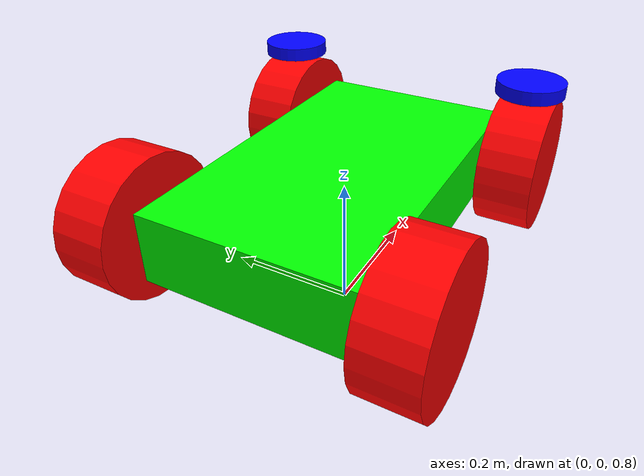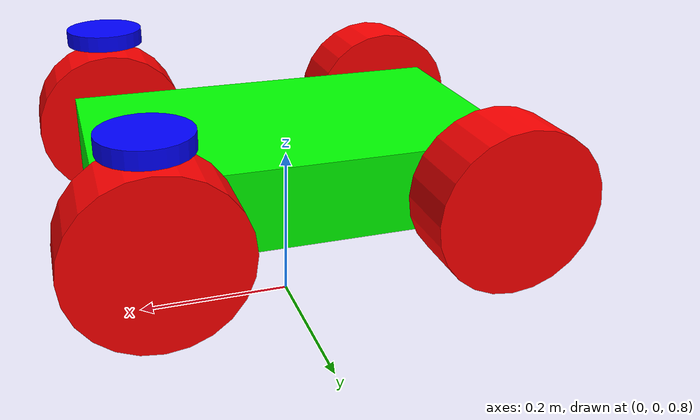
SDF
<sdf version="1.7">
 <world name="skycat_runway">
  <plugin filename="libignition-gazebo-physics-system.so" name="ignition::gazebo::systems::Physics"/>
  <plugin filename="libignition-gazebo-user-commands-system.so" name="ignition::gazebo::systems::UserCommands"/>
  <plugin filename="libignition-gazebo-scene-broadcaster-system.so" name="ignition::gazebo::systems::SceneBroadcaster"/>
  <plugin filename="libignition-gazebo-imu-system.so" name="ignition::gazebo::systems::Imu"/>
  <scene><ambient>1.0 1.0 1.0</ambient><background>0.8 0.8 0.8</background></scene>
  <light type="directional" name="sun">
   <pose>0 0 10 0 0 0</pose>
   <diffuse>0.8 0.8 0.8 1</diffuse>
   <specular>0.8 0.8 0.8 1</specular>
   <attenuation>
    <range>1000</range>
    <constant>0.9</constant>
    <linear>0.01</linear>
    <quadratic>0.001</quadratic>
   </attenuation>
   <direction>-0.5 0.1 -0.9</direction>
  </light>
  <include><pose>0 0 1.0 0 0 0</pose><uri>model://steer_bot</uri></include>
 </world>
</sdf>

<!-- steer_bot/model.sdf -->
<sdf version='1.6'>
<model name='steer_bot'>

  <link name='base_link'>
    <inertial>
      <pose>0 0 0 0 0 0</pose>
      <mass>5</mass>
      <inertia>
        <ixx>0.0416667</ixx>
        <ixy>0</ixy>
        <ixz>0</ixz>
        <iyy>0.108333</iyy>
        <iyz>0</iyz>
        <izz>0.141667</izz>
      </inertia>
    </inertial>
    <collision name='collision'>
      <pose>0 0 0 0 0 0</pose>
      <geometry>
        <box>
          <size>0.5 0.3 0.1</size>
        </box>
      </geometry>
    </collision>
    <visual name='visual'>
      <pose>0 0 0 0 0 0</pose>
      <geometry>
        <box>
          <size>0.5 0.3 0.1</size>
        </box>
      </geometry>
      <material>
        <ambient>0 1 0</ambient>
        <diffuse>0 1 0</diffuse>
        <specular>0.1 0.1 0.1 1</specular>
      </material>
    </visual>
  </link>

  <joint name='front_left_steer_joint' type='revolute'>
    <pose relative_to='base_link'>0.2 0.2 0.12 0 -0 0</pose>
    <parent>base_link</parent>
    <child>front_left_steer_link</child>
    <axis>
      <xyz>0 0 1</xyz>
      <limit>
        <lower>-3.14159</lower>
        <upper>3.14159</upper>
        <effort>10</effort>
        <velocity>5</velocity>
      </limit>
      <dynamics>
        <damping>0.0001</damping>
      </dynamics>
    </axis>
  </joint>
  <link name='front_left_steer_link'>
    <pose relative_to='front_left_steer_joint'>0 0 0 0 0 0</pose>
    <inertial>
      <pose>0 0 0 0 0 0</pose>
      <mass>1</mass>
      <inertia>
        <ixx>0.000658333</ixx>
        <ixy>0</ixy>
        <ixz>0</ixz>
        <iyy>0.000658333</iyy>
        <iyz>0</iyz>
        <izz>0.00125</izz>
      </inertia>
    </inertial>
    <collision name='collision'>
      <pose>0 0 0 0 0 0</pose>
      <geometry>
        <cylinder>
          <length>0.02</length>
          <radius>0.05</radius>
        </cylinder>
      </geometry>
    </collision>
    <visual name='visual'>
      <pose>0 0 0 0 0 0</pose>
      <geometry>
        <cylinder>
          <length>0.02</length>
          <radius>0.05</radius>
        </cylinder>
      </geometry>
      <material>
        <ambient>0 0 1</ambient>
        <diffuse>0 0 1</diffuse>
        <specular>0.1 0.1 0.1 1</specular>
      </material>
    </visual>
  </link>

  <joint name='front_left_wheel_joint' type='revolute'>
    <pose relative_to='front_left_steer_link'>0 0 -0.12 -1.5708 0 0</pose>
    <parent>front_left_steer_link</parent>
    <child>front_left_wheel_link</child>
    <axis>
      <xyz>0 0 1</xyz>
      <limit>
        <lower>-1e+16</lower>
        <upper>1e+16</upper>
      </limit>
      <dynamics>
        <damping>0.0001</damping>
      </dynamics>
    </axis>
  </joint>
  <link name='front_left_wheel_link'>
    <pose relative_to='front_left_wheel_joint'>0 0 0 0 0 0</pose>
    <inertial>
      <pose>0 0 0 0 0 0</pose>
      <mass>1</mass>
      <inertia>
        <ixx>0.00303333</ixx>
        <ixy>0</ixy>
        <ixz>0</ixz>
        <iyy>0.00303333</iyy>
        <iyz>0</iyz>
        <izz>0.005</izz>
      </inertia>
    </inertial>
    <collision name='collision'>
      <pose>0 0 0 0 -0 0</pose>
      <geometry>
        <cylinder>
          <length>0.08</length>
          <radius>0.1</radius>
        </cylinder>
      </geometry>
    </collision>
    <visual name='visual'>
      <pose>0 0 0 0 0 0</pose>
      <geometry>
        <cylinder>
          <length>0.08</length>
          <radius>0.1</radius>
        </cylinder>
      </geometry>
      <material>
        <ambient>1 0 0</ambient>
        <diffuse>1 0 0</diffuse>
        <specular>0.1 0.1 0.1 1</specular>
      </material>
    </visual>
  </link>

  <joint name='front_right_steer_joint' type='revolute'>
    <pose relative_to='base_link'>0.2 -0.2 0.12 0 -0 0</pose>
    <parent>base_link</parent>
    <child>front_right_steer_link</child>
    <axis>
      <xyz>0 0 1</xyz>
      <limit>
        <lower>-3.14159</lower>
        <upper>3.14159</upper>
        <effort>10</effort>
        <velocity>5</velocity>
      </limit>
      <dynamics>
        <damping>0.0001</damping>
      </dynamics>
    </axis>
  </joint>
  <link name='front_right_steer_link'>
    <pose relative_to='front_right_steer_joint'>0 0 0 0 0 0</pose>
    <inertial>
      <pose>0 0 0 0 0 0</pose>
      <mass>1</mass>
      <inertia>
        <ixx>0.000658333</ixx>
        <ixy>0</ixy>
        <ixz>0</ixz>
        <iyy>0.000658333</iyy>
        <iyz>0</iyz>
        <izz>0.00125</izz>
      </inertia>
    </inertial>
    <collision name='collision'>
      <pose>0 0 0 0 0 0</pose>
      <geometry>
        <cylinder>
          <length>0.02</length>
          <radius>0.05</radius>
        </cylinder>
      </geometry>
    </collision>
    <visual name='visual'>
      <pose>0 0 0 0 0 0</pose>
      <geometry>
        <cylinder>
          <length>0.02</length>
          <radius>0.05</radius>
        </cylinder>
      </geometry>
      <material>
        <ambient>0 0 1</ambient>
        <diffuse>0 0 1</diffuse>
        <specular>0.1 0.1 0.1 1</specular>
      </material>
    </visual>
  </link>

  <joint name='front_right_wheel_joint' type='revolute'>
    <pose relative_to='front_right_steer_link'>0 0 -0.12 -1.5708 0 0</pose>
    <parent>front_right_steer_link</parent>
    <child>front_right_wheel_link</child>
    <axis>
      <xyz>0 0 1</xyz>
      <limit>
        <lower>-1e+16</lower>
        <upper>1e+16</upper>
      </limit>
      <dynamics>
        <damping>0.0001</damping>
      </dynamics>
    </axis>
  </joint>
  <link name='front_right_wheel_link'>
    <pose relative_to='front_right_wheel_joint'>0 0 0 0 0 0</pose>
    <inertial>
      <pose>0 0 0 0 0 0</pose>
      <mass>1</mass>
      <inertia>
        <ixx>0.00303333</ixx>
        <ixy>0</ixy>
        <ixz>0</ixz>
        <iyy>0.00303333</iyy>
        <iyz>0</iyz>
        <izz>0.005</izz>
      </inertia>
    </inertial>
    <collision name='collision'>
      <pose>0 0 0 0 0 0</pose>
      <geometry>
        <cylinder>
          <length>0.08</length>
          <radius>0.1</radius>
        </cylinder>
      </geometry>
    </collision>
    <visual name='visual'>
      <pose>0 0 0 0 0 0</pose>
      <geometry>
        <cylinder>
          <length>0.08</length>
          <radius>0.1</radius>
        </cylinder>
      </geometry>
      <material>
        <ambient>1 0 0</ambient>
        <diffuse>1 0 0</diffuse>
        <specular>0.1 0.1 0.1 1</specular>
      </material>
    </visual>
  </link>

  <joint name='rear_left_wheel_joint' type='revolute'>
    <pose relative_to='base_link'>-0.2 0.2 0 -1.5708 0 0</pose>
    <parent>base_link</parent>
    <child>rear_left_wheel_link</child>
    <axis>
      <xyz>0 0 1</xyz>
      <limit>
        <lower>-1e+16</lower>
        <upper>1e+16</upper>
      </limit>
      <dynamics>
        <damping>0.0001</damping>
      </dynamics>
    </axis>
  </joint>
  <link name='rear_left_wheel_link'>
    <pose relative_to='rear_left_wheel_joint'>0 0 0 0 0 0</pose>
    <inertial>
      <pose>0 0 0 0 0 0</pose>
      <mass>1</mass>
      <inertia>
        <ixx>0.00303333</ixx>
        <ixy>0</ixy>
        <ixz>0</ixz>
        <iyy>0.00303333</iyy>
        <iyz>0</iyz>
        <izz>0.005</izz>
      </inertia>
    </inertial>
    <collision name='collision'>
      <pose>0 0 0 0 0 0</pose>
      <geometry>
        <cylinder>
          <length>0.08</length>
          <radius>0.1</radius>
        </cylinder>
      </geometry>
    </collision>
    <visual name='visual'>
      <pose>0 0 0 0 0 0</pose>
      <geometry>
        <cylinder>
          <length>0.08</length>
          <radius>0.1</radius>
        </cylinder>
      </geometry>
      <material>
          <ambient>1 0 0</ambient>
          <diffuse>1 0 0</diffuse>
          <specular>0.1 0.1 0.1 1</specular>
      </material>
    </visual>
  </link>

  <joint name='rear_right_wheel_joint' type='revolute'>
    <pose relative_to='base_link'>-0.2 -0.2 0 -1.5708 0 0</pose>
    <parent>base_link</parent>
    <child>rear_right_wheel_link</child>
    <axis>
      <xyz>0 0 1</xyz>
      <limit>
        <lower>-1e+16</lower>
        <upper>1e+16</upper>
      </limit>
      <dynamics>
        <damping>0.0001</damping>
      </dynamics>
    </axis>
  </joint>
  <link name='rear_right_wheel_link'>
    <pose relative_to='rear_right_wheel_joint'>0 0 0 0 0 0</pose>
    <inertial>
      <pose>0 0 0 0 0 0</pose>
      <mass>1</mass>
      <inertia>
        <ixx>0.00303333</ixx>
        <ixy>0</ixy>
        <ixz>0</ixz>
        <iyy>0.00303333</iyy>
        <iyz>0</iyz>
        <izz>0.005</izz>
      </inertia>
    </inertial>
    <collision name='collision'>
      <pose>0 0 0 0 0 0</pose>
      <geometry>
        <cylinder>
          <length>0.08</length>
          <radius>0.1</radius>
        </cylinder>
      </geometry>
    </collision>
    <visual name='visual'>
      <pose>0 0 0 0 0 0</pose>
      <geometry>
        <cylinder>
          <length>0.08</length>
          <radius>0.1</radius>
        </cylinder>
      </geometry>
      <material>
          <ambient>1 0 0</ambient>
          <diffuse>1 0 0</diffuse>
          <specular>0.1 0.1 0.1 1</specular>
      </material>
    </visual>
  </link>

  <!-- Sensors -->
  <link name='imu_link'>
    <inertial>
      <mass>0.01</mass>
      <inertia>
        <ixx>1.66667E-07</ixx>
        <ixy>0</ixy>
        <ixz>0</ixz>
        <iyy>1.66667E-07</iyy>
        <iyz>0</iyz>
        <izz>1.66667E-07</izz>
      </inertia>
    </inertial>
    <sensor name="imu_sensor" type="imu">
      <pose>0 0 0 3.141593 0 0</pose>
      <always_on>1</always_on>
      <update_rate>1000.0</update_rate>
    </sensor>
  </link>
  <joint name='imu_joint' type='revolute'>
    <child>imu_link</child>
    <parent>base_link</parent>
    <axis>
      <xyz>0 0 1</xyz>
      <limit>
        <lower>0</lower>
        <upper>0</upper>
      </limit>
      <dynamics>
        <damping>0.0001</damping>
      </dynamics>
      <use_parent_model_frame>1</use_parent_model_frame>
    </axis>
  </joint>

  <!-- Plugins -->
  <plugin name="ignition::gazebo::systems::JointStatePublisher"
      filename="libignition-gazebo-joint-state-publisher-system.so">
  </plugin>
  <plugin name="ignition::gazebo::systems::ApplyJointForce"
      filename="libignition-gazebo-apply-joint-force-system.so">
      <joint_name>rear_left_wheel_joint</joint_name>
  </plugin>
  <plugin name="ignition::gazebo::systems::ApplyJointForce"
      filename="libignition-gazebo-apply-joint-force-system.so">
      <joint_name>rear_right_wheel_joint</joint_name>
  </plugin>
  <plugin name="ignition::gazebo::systems::ApplyJointForce"
      filename="libignition-gazebo-apply-joint-force-system.so">
      <joint_name>front_left_steer_joint</joint_name>
  </plugin>
  <plugin name="ignition::gazebo::systems::ApplyJointForce"
      filename="libignition-gazebo-apply-joint-force-system.so">
      <joint_name>front_right_steer_joint</joint_name>
  </plugin>

  <plugin name="ArduPilotPlugin"
      filename="libArduPilotPlugin.so">
    <!-- Port settings -->
    <fdm_addr>127.0.0.1</fdm_addr>
    <fdm_port_in>9002</fdm_port_in>
    <connectionTimeoutMaxCount>5</connectionTimeoutMaxCount>
    <modelXYZToAirplaneXForwardZDown>0 0 0 3.141593 0 0</modelXYZToAirplaneXForwardZDown>
    <gazeboXYZToNED>0 0 0 3.141593 0 0</gazeboXYZToNED>

    <!-- Sensors -->
    <imuName>imu_link::imu_sensor</imuName>

    <!-- Control / channels -->

    <!--
        SERVO1_FUNCTION 94 (Script 1)
    -->
    <control channel="0">
      <jointName>rear_left_wheel_joint</jointName>
      <useForce>1</useForce>
      <multiplier>100.0</multiplier>
      <offset>-0.5</offset>
      <servo_min>1000</servo_min>
      <servo_max>2000</servo_max>
      <type>VELOCITY</type>
      <p_gain>1</p_gain>
      <i_gain>0</i_gain>
      <d_gain>0</d_gain>
      <i_max>1</i_max>
      <i_min>0</i_min>
      <cmd_max>50.0</cmd_max>
      <cmd_min>-50.0</cmd_min>
    </control>

    <!--
        SERVO2_FUNCTION 95 (Script 2)
    -->
    <control channel="1">
      <jointName>rear_right_wheel_joint</jointName>
      <useForce>1</useForce>
      <multiplier>100.0</multiplier>
      <offset>-0.5</offset>
      <servo_min>1000</servo_min>
      <servo_max>2000</servo_max>
      <type>VELOCITY</type>
      <p_gain>1</p_gain>
      <i_gain>0</i_gain>
      <d_gain>0</d_gain>
      <i_max>1</i_max>
      <i_min>0</i_min>
      <cmd_max>50.0</cmd_max>
      <cmd_min>-50.0</cmd_min>
    </control>

    <!--
        SERVO3_FUNCTION 96 (Script 3)
    -->
    <control channel="2">
      <jointName>front_left_steer_joint</jointName>
      <useForce>1</useForce>
      <multiplier>1.570796327</multiplier>
      <offset>-0.5</offset>
      <servo_min>1000</servo_min>
      <servo_max>2000</servo_max>
      <type>POSITION</type>
      <p_gain>2.0</p_gain>
      <i_gain>0</i_gain>
      <d_gain>0.1</d_gain>
      <i_max>1</i_max>
      <i_min>0</i_min>
      <cmd_max>2.0</cmd_max>
      <cmd_min>-2.0</cmd_min>
    </control>

    <!--
        SERVO4_FUNCTION 97 (Script 4)
    -->
    <control channel="3">
      <jointName>front_right_steer_joint</jointName>
      <useForce>1</useForce>
      <multiplier>1.570796327</multiplier>
      <offset>-0.5</offset>
      <servo_min>1000</servo_min>
      <servo_max>2000</servo_max>
      <type>POSITION</type>
      <p_gain>2.0</p_gain>
      <i_gain>0</i_gain>
      <d_gain>0.1</d_gain>
      <i_max>1</i_max>
      <i_min>0</i_min>
      <cmd_max>2.0</cmd_max>
      <cmd_min>-2.0</cmd_min>
    </control>
  </plugin>

</model>
</sdf>
